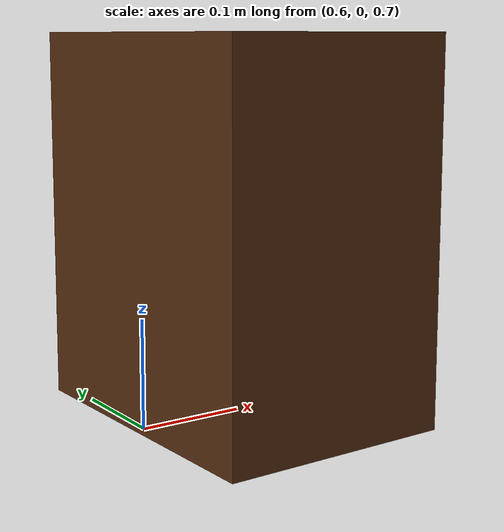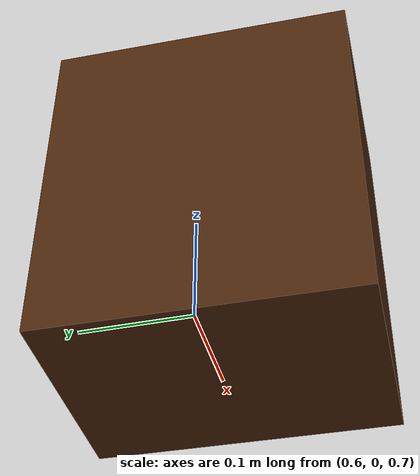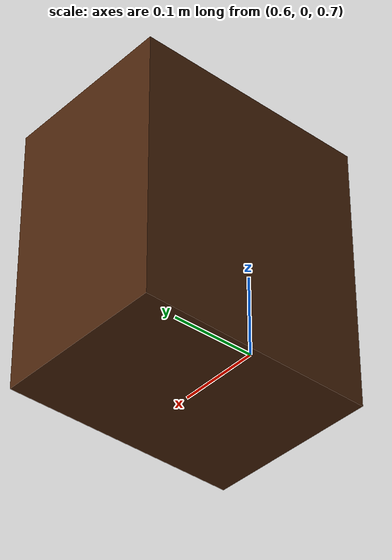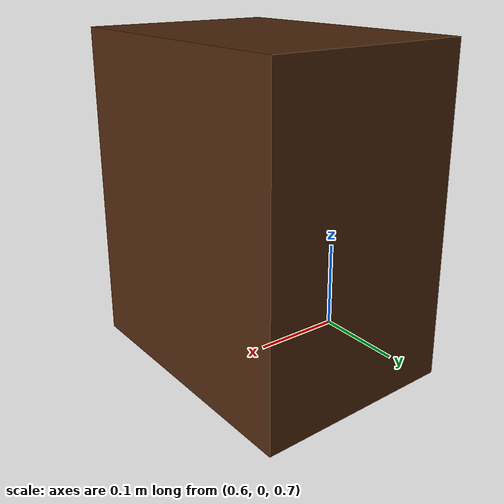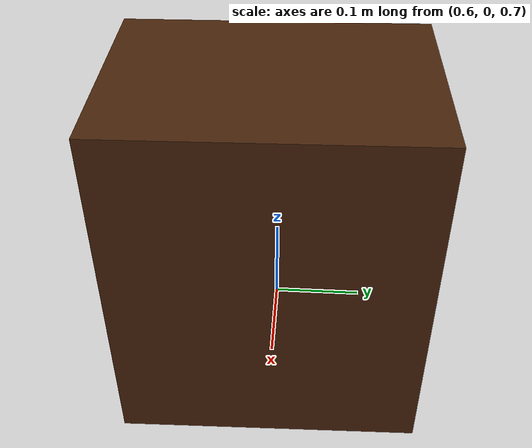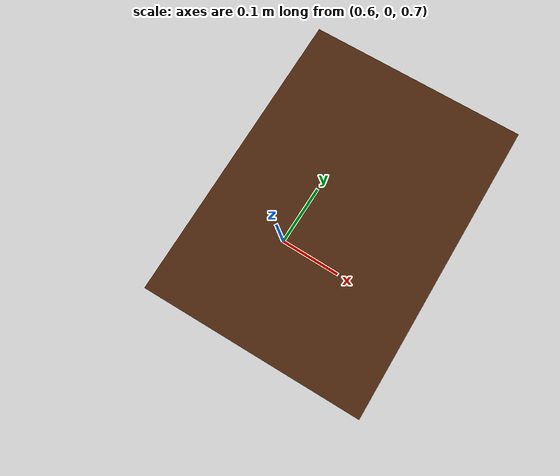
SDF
<?xml version="1.0" ?>
<sdf version="1.6">
  <model name="movable_box">
    <static>false</static>
    <link name="box_link">
      <inertial>
        <mass>0.8</mass>
      </inertial>

      <visual name="visual">
        <geometry>
          <box>
            <size>0.22 0.3 0.35</size>
          </box>
        </geometry>
        <material>
          <diffuse>0.3 0.15 0.05 1.0</diffuse>   <!-- Dark brown -->
          <specular>0.2 0.1 0.05 1.0</specular>
        </material>
      </visual>

      <collision name="collision">
        <geometry>
          <box>
            <size>0.22 0.3 0.35</size>
          </box>
        </geometry>
        <surface>
          <friction>
            <ode>
              <mu>0.7</mu>
              <mu2>0.7</mu2>
            </ode>
          </friction>
          <contact>
            <ode>
              <kp>100</kp>
              <kd>100</kd>
              <max_vel>0.01</max_vel>
            </ode>
          </contact>
          <bounce>
            <restitution_coefficient>0.0</restitution_coefficient>
            <threshold>0.0</threshold>
          </bounce>
        </surface>

        <!-- Enable soft hydroelastic contact (can be modified)-->
        <drake:proximity_properties>
          <drake:rigid_hydroelastic/>
  <!-- Rigid doesn’t use hydroelastic_modulus; remove it if present -->
          <drake:hunt_crossley_dissipation>1.0</drake:hunt_crossley_dissipation>
          <drake:mu_static>0.9</drake:mu_static>
          <drake:mu_dynamic>0.89</drake:mu_dynamic>
        </drake:proximity_properties>
      </collision>

      <!-- Positioned on top of fixed box -->
      <pose>0.7 0 0.875 0 0 0.02</pose>
    </link>
  </model>
</sdf>
